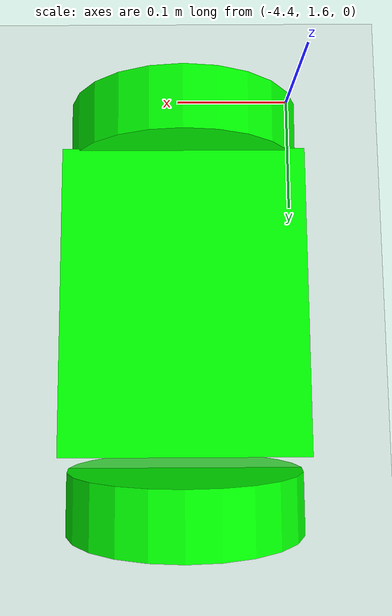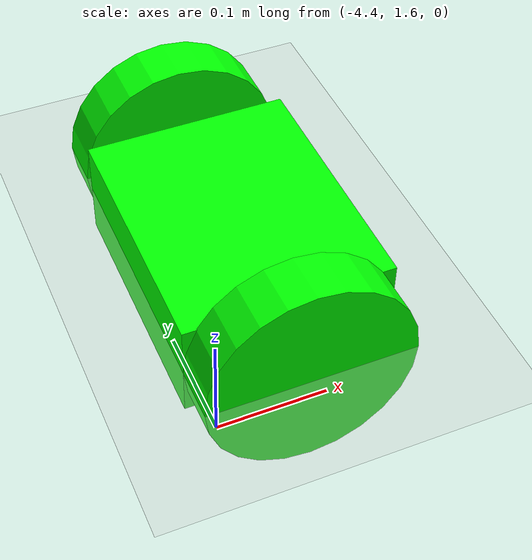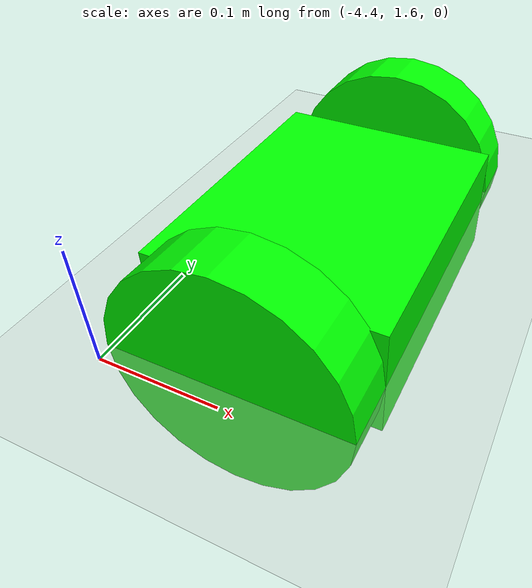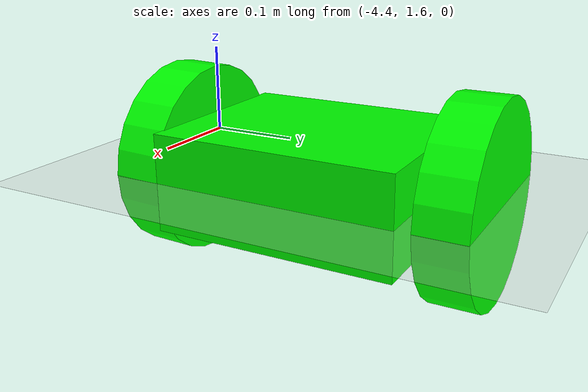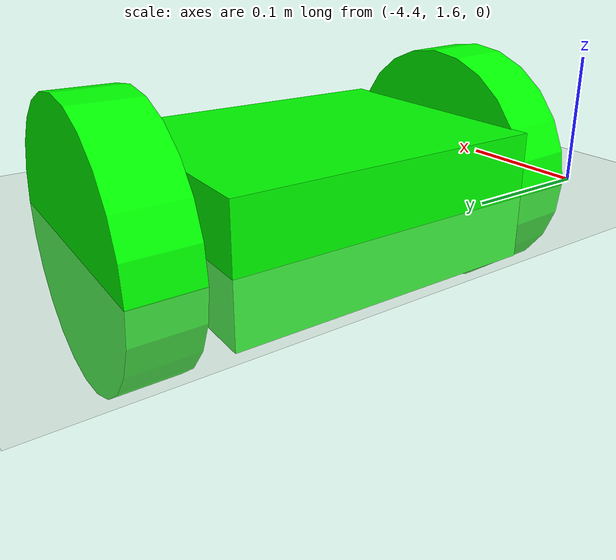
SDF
<sdf version="1.6">
 <world name="default">
  <model name="ground_plane">
   <static>1</static>
   <link name="link">
    <collision name="collision">
     <geometry><plane><normal>0 0 1</normal><size>100 100</size></plane></geometry>
     <surface><friction><ode><mu>100</mu><mu2>50</mu2></ode></friction></surface>
    </collision>
    <visual name="visual">
     <cast_shadows>0</cast_shadows>
     <geometry><plane><normal>0 0 1</normal><size>100 100</size></plane></geometry>
     <material>
      <script><uri>file://media/materials/scripts/gazebo.material</uri><name>Gazebo/Grey</name></script>
     </material>
    </visual>
   </link>
  </model>
  <model name="greenRobot_0">
   <link name="link_1">
    <pose>8e-06 -0.004997 0 0 -0 0</pose>
    <inertial>
     <mass>1</mass>
     <inertia>
      <ixx>0.166667</ixx>
      <ixy>0</ixy>
      <ixz>0</ixz>
      <iyy>0.166667</iyy>
      <iyz>0</iyz>
      <izz>0.166667</izz>
     </inertia>
    </inertial>
    <visual name="visual">
     <pose>0 0 0 0 -0 1.5707</pose>
     <geometry><box><size>0.25 0.2 0.1</size></box></geometry>
     <material>
      <lighting>1</lighting>
      <script><uri>file://media/materials/scripts/gazebo.material</uri><name>Gazebo/Grey</name></script>
      <shader type="pixel"><normal_map>__default__</normal_map></shader>
      <ambient>0 1 0 1</ambient>
      <diffuse>0 1 0 1</diffuse>
      <specular>0 1 0 1</specular>
      <emissive>0 0 0 1</emissive>
     </material>
    </visual>
    <collision name="collision">
     <pose>0 0 0 0 -0 1.5707</pose>
     <geometry><box><size>0.25 0.2 0.1</size></box></geometry>
     <surface>
      <friction>
       <ode><mu>1</mu><mu2>1</mu2><fdir1>0 0 0</fdir1><slip1>0</slip1><slip2>0</slip2></ode>
       <torsional>
        <coefficient>1</coefficient>
        <patch_radius>0</patch_radius>
        <surface_radius>0</surface_radius>
        <use_patch_radius>1</use_patch_radius>
        <ode><slip>0</slip></ode>
       </torsional>
      </friction>
      <bounce><restitution_coefficient>0</restitution_coefficient><threshold>1e+06</threshold></bounce>
      <contact>
       <collide_without_contact>0</collide_without_contact>
       <collide_without_contact_bitmask>1</collide_without_contact_bitmask>
       <collide_bitmask>1</collide_bitmask>
       <ode>
        <soft_cfm>0</soft_cfm>
        <soft_erp>0.2</soft_erp>
        <kp>1e+13</kp>
        <kd>1</kd>
        <max_vel>0.01</max_vel>
        <min_depth>0</min_depth>
       </ode>
       <bullet>
        <split_impulse>1</split_impulse>
        <split_impulse_penetration_threshold>-0.01</split_impulse_penetration_threshold>
        <soft_cfm>0</soft_cfm>
        <soft_erp>0.2</soft_erp>
        <kp>1e+13</kp>
        <kd>1</kd>
       </bullet>
      </contact>
     </surface>
    </collision>
   </link>
   <link name="link_2">
    <pose>-4e-06 0.160013 0 0 -0 0</pose>
    <inertial>
     <mass>1</mass>
     <inertia><ixx>0.145833</ixx><ixy>0</ixy><ixz>0</ixz><iyy>0.145833</iyy><iyz>0</iyz><izz>0.125</izz></inertia>
    </inertial>
    <visual name="visual">
     <pose>0 0 0 1.5707 -0 0</pose>
     <geometry><cylinder><radius>0.1</radius><length>0.05</length></cylinder></geometry>
     <material>
      <lighting>1</lighting>
      <script><uri>file://media/materials/scripts/gazebo.material</uri><name>Gazebo/Grey</name></script>
      <shader type="pixel"><normal_map>__default__</normal_map></shader>
      <ambient>0 1 0 1</ambient>
      <diffuse>0 1 0 1</diffuse>
      <specular>0 1 0 1</specular>
      <emissive>0 0 0 1</emissive>
     </material>
    </visual>
    <collision name="collision">
     <pose>0 0 0 1.5707 -0 0</pose>
     <geometry><cylinder><radius>0.1</radius><length>0.05</length></cylinder></geometry>
     <surface>
      <friction>
       <ode><mu>1</mu><mu2>1</mu2><fdir1>0 0 0</fdir1><slip1>0</slip1><slip2>0</slip2></ode>
       <torsional>
        <coefficient>1</coefficient>
        <patch_radius>0</patch_radius>
        <surface_radius>0</surface_radius>
        <use_patch_radius>1</use_patch_radius>
        <ode><slip>0</slip></ode>
       </torsional>
      </friction>
      <bounce><restitution_coefficient>0</restitution_coefficient><threshold>1e+06</threshold></bounce>
      <contact>
       <collide_without_contact>0</collide_without_contact>
       <collide_without_contact_bitmask>1</collide_without_contact_bitmask>
       <collide_bitmask>1</collide_bitmask>
       <ode>
        <soft_cfm>0</soft_cfm>
        <soft_erp>0.2</soft_erp>
        <kp>1e+13</kp>
        <kd>1</kd>
        <max_vel>0.01</max_vel>
        <min_depth>0</min_depth>
       </ode>
       <bullet>
        <split_impulse>1</split_impulse>
        <split_impulse_penetration_threshold>-0.01</split_impulse_penetration_threshold>
        <soft_cfm>0</soft_cfm>
        <soft_erp>0.2</soft_erp>
        <kp>1e+13</kp>
        <kd>1</kd>
       </bullet>
      </contact>
     </surface>
    </collision>
   </link>
   <link name="link_2_clone">
    <pose>-4e-06 -0.155016 0 -0.03 0 0</pose>
    <inertial>
     <mass>1</mass>
     <inertia><ixx>0.145833</ixx><ixy>0</ixy><ixz>0</ixz><iyy>0.145833</iyy><iyz>0</iyz><izz>0.125</izz></inertia>
    </inertial>
    <visual name="visual">
     <pose>0 0 0 1.5707 -0 0</pose>
     <geometry><cylinder><radius>0.1</radius><length>0.05</length></cylinder></geometry>
     <material>
      <lighting>1</lighting>
      <script><uri>file://media/materials/scripts/gazebo.material</uri><name>Gazebo/Grey</name></script>
      <shader type="pixel"><normal_map>__default__</normal_map></shader>
      <ambient>0 1 0 1</ambient>
      <diffuse>0 1 0 1</diffuse>
      <specular>0 1 0 1</specular>
      <emissive>0 0 0 1</emissive>
     </material>
    </visual>
    <collision name="collision">
     <pose>0 0 0 1.5707 -0 0</pose>
     <geometry><cylinder><radius>0.1</radius><length>0.05</length></cylinder></geometry>
     <surface>
      <friction>
       <ode><mu>1</mu><mu2>1</mu2><fdir1>0 0 0</fdir1><slip1>0</slip1><slip2>0</slip2></ode>
       <torsional>
        <coefficient>1</coefficient>
        <patch_radius>0</patch_radius>
        <surface_radius>0</surface_radius>
        <use_patch_radius>1</use_patch_radius>
        <ode><slip>0</slip></ode>
       </torsional>
      </friction>
      <bounce><restitution_coefficient>0</restitution_coefficient><threshold>1e+06</threshold></bounce>
      <contact>
       <collide_without_contact>0</collide_without_contact>
       <collide_without_contact_bitmask>1</collide_without_contact_bitmask>
       <collide_bitmask>1</collide_bitmask>
       <ode>
        <soft_cfm>0</soft_cfm>
        <soft_erp>0.2</soft_erp>
        <kp>1e+13</kp>
        <kd>1</kd>
        <max_vel>0.01</max_vel>
        <min_depth>0</min_depth>
       </ode>
       <bullet>
        <split_impulse>1</split_impulse>
        <split_impulse_penetration_threshold>-0.01</split_impulse_penetration_threshold>
        <soft_cfm>0</soft_cfm>
        <soft_erp>0.2</soft_erp>
        <kp>1e+13</kp>
        <kd>1</kd>
       </bullet>
      </contact>
     </surface>
    </collision>
   </link>
   <joint name="link_1_JOINT_3" type="revolute">
    <parent>link_1</parent>
    <child>link_2_clone</child>
    <axis>
     <xyz>1 0 0</xyz>
     <use_parent_model_frame>0</use_parent_model_frame>
     <limit>
      <lower>-1.79769e+308</lower>
      <upper>1.79769e+308</upper>
      <effort>-1</effort>
      <velocity>-1</velocity>
     </limit>
     <dynamics>
      <spring_reference>0</spring_reference>
      <spring_stiffness>0</spring_stiffness>
      <damping>0</damping>
     </dynamics>
    </axis>
    <physics>
     <ode><limit><cfm>0</cfm><erp>0.2</erp></limit><suspension><cfm>0</cfm><erp>0.2</erp></suspension></ode>
    </physics>
   </joint>
   <joint name="link_1_JOINT_4" type="revolute">
    <parent>link_1</parent>
    <child>link_2</child>
    <axis>
     <xyz>1 0 0</xyz>
     <use_parent_model_frame>0</use_parent_model_frame>
     <limit>
      <lower>-1.79769e+308</lower>
      <upper>1.79769e+308</upper>
      <effort>-1</effort>
      <velocity>-1</velocity>
     </limit>
     <dynamics>
      <spring_reference>0</spring_reference>
      <spring_stiffness>0</spring_stiffness>
      <damping>0</damping>
     </dynamics>
    </axis>
    <physics>
     <ode><limit><cfm>0</cfm><erp>0.2</erp></limit><suspension><cfm>0</cfm><erp>0.2</erp></suspension></ode>
    </physics>
   </joint>
   <static>0</static>
   <pose>-4.30502 1.79362 0 0 -0 0</pose>
  </model>
 </world>
</sdf>
